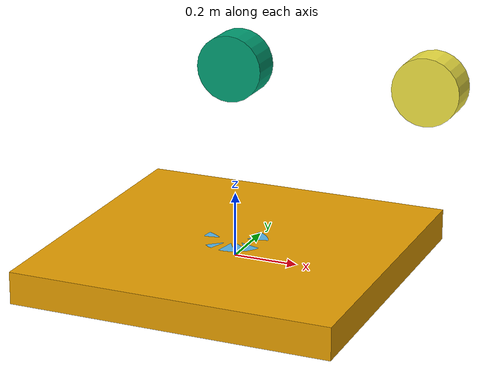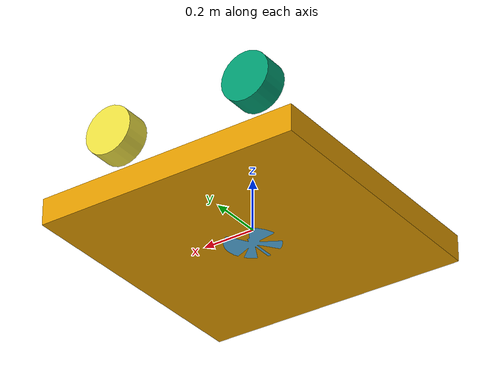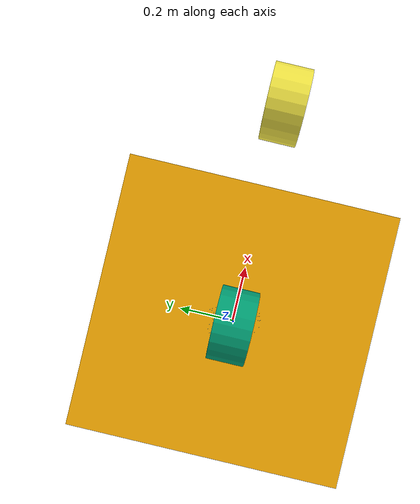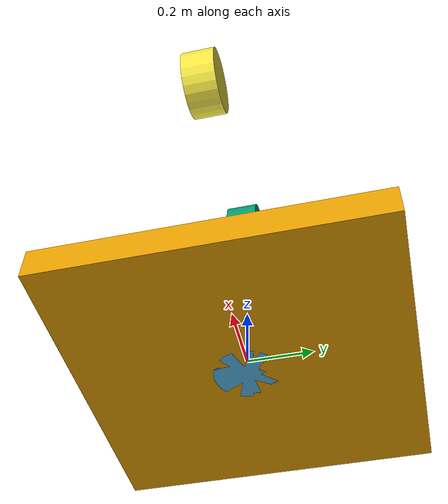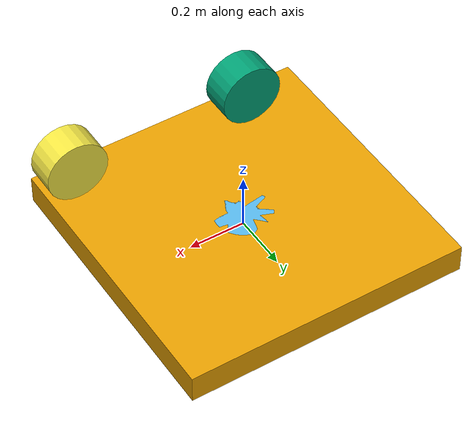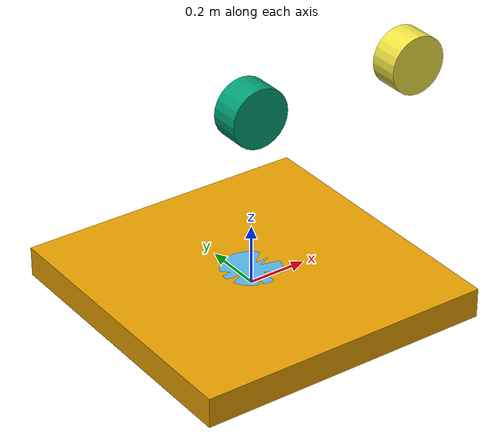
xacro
<?xml version="1.0"?>
<robot name="3dof_robot" xmlns:xacro="http://www.ros.org/wiki/xacro">

    <xacro:property name="d1" value="0.475" />
    <xacro:property name="d2" value=".600" />
    <xacro:property name="d3" value="0.3" />
    <xacro:property name="base_link_w" value="1" />
    <xacro:property name="base_link_h" value="1" />
    <xacro:property name="base_link_t" value="0.1" />
    <xacro:property name="link_rev_h" value="0.1" />
    <xacro:property name="link_rev_r" value="0.1" />
    <xacro:property name="link_3_s" value=".4" />

    <xacro:property name="ee_w" value="0.4" />
    <xacro:property name="ee_h" value="0.05" />
    <xacro:property name="ee_limit_lower" value="0" />
    <xacro:property name="ee_limit_upper" value=".5" />

    <link name="base_link">
        <visual>
            <geometry>
                <box size="${base_link_w} ${base_link_h} ${base_link_t}" />
            </geometry>
        </visual>
        <collision>
            <geometry>
                <box size="${base_link_w} ${base_link_h} ${base_link_t}" />
            </geometry>
        </collision>
        <inertial>
            <origin rpy="0 0 0" xyz="0 0 0" />
            <mass value="100" />
            <inertia ixx="1e-3" ixy="0" ixz="0" iyy="1e-3" iyz="0" izz="1e-3" />
        </inertial>
    </link>

    <link name="link_1">
        <origin rpy="0 0 0" xyz="0 0 ${base_link_t + link_rev_h/2}" />
        <visual>
            <geometry>
                <cylinder length="${link_rev_h}" radius="${link_rev_r}" />
            </geometry>
        </visual>
        <collision>
            <geometry>
                <cylinder length="${link_rev_h}" radius="${link_rev_r}" />
            </geometry>
        </collision>
        <inertial>
            <mass value="10" />
            <inertia ixx="1e-3" ixy="0.0" ixz="0.0" iyy="1e-3" iyz="0.0" izz="1e-3" />
        </inertial>
    </link>

    <joint name="base_to_link_1" type="continuous">
        <parent link="base_link" />
        <child link="link_1" />
        <origin rpy="0 0 0" xyz="0 0 0" />
        <axis xyz="0 0 1" />
    </joint>

    <link name="link_2">
        <visual>
            <geometry>
                <cylinder length="${link_rev_h}" radius="${link_rev_r}" />
            </geometry>
        </visual>
        <collision>
            <geometry>
                <cylinder length="${link_rev_h}" radius="${link_rev_r}" />
            </geometry>
        </collision>
        <inertial>
            <mass value="10" />
            <inertia ixx="1e-3" ixy="0.0" ixz="0.0" iyy="1e-3" iyz="0.0" izz="1e-3" />
        </inertial>
    </link>

    <joint name="link_1_to_link_2" type="continuous">
        <parent link="link_1" />
        <child link="link_2" />
        <origin rpy="${pi/2} 0 0" xyz="0 0 ${d2}" />
        <axis xyz="0 0 1" />
    </joint>

    <link name="link_3">
        <visual>
            <geometry>
                <cylinder length="${link_rev_h}" radius="${link_rev_r}" />
            </geometry>
        </visual>
        <collision>
            <geometry>
                <cylinder length="${link_rev_h}" radius="${link_rev_r}" />
            </geometry>
        </collision>
        <inertial>
            <mass value="10" />
            <inertia ixx="1e-3" ixy="0.0" ixz="0.0" iyy="1e-3" iyz="0.0" izz="1e-3" />
        </inertial>
    </link>

    <joint name="link_2_to_link_3" type="revolute">
        <parent link="link_2" />
        <child link="link_3" />
        <origin rpy="0 0 0" xyz="${d2} 0 0" />
        <limit lower="${-pi/4}" upper="${pi}" effort="100" velocity="1.0" />
        <axis xyz="0 0 1" />
    </joint>

</robot>
